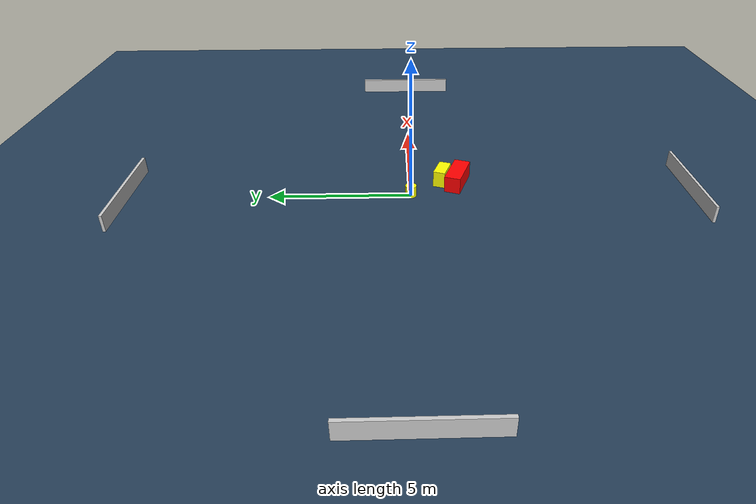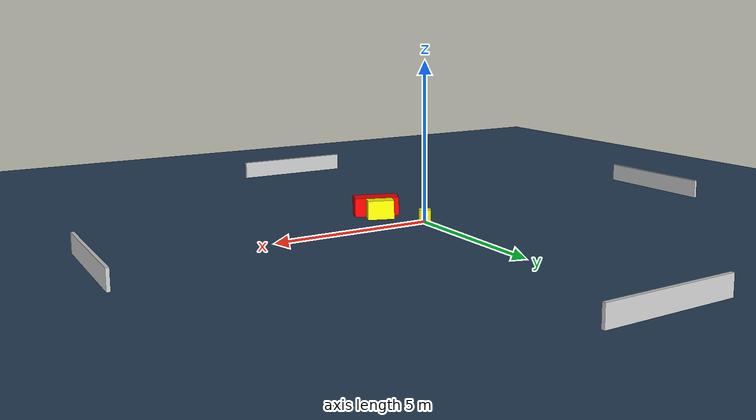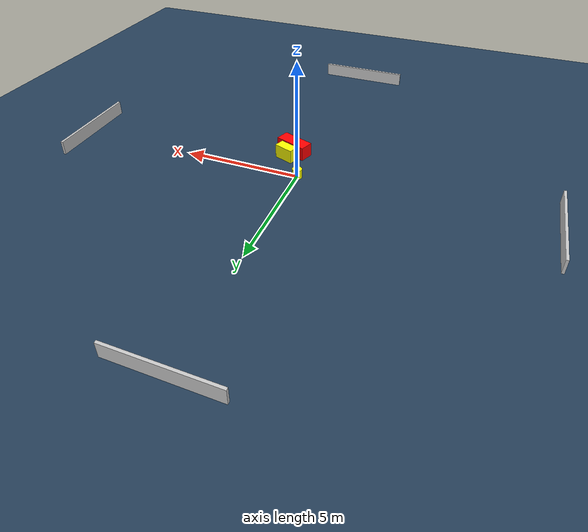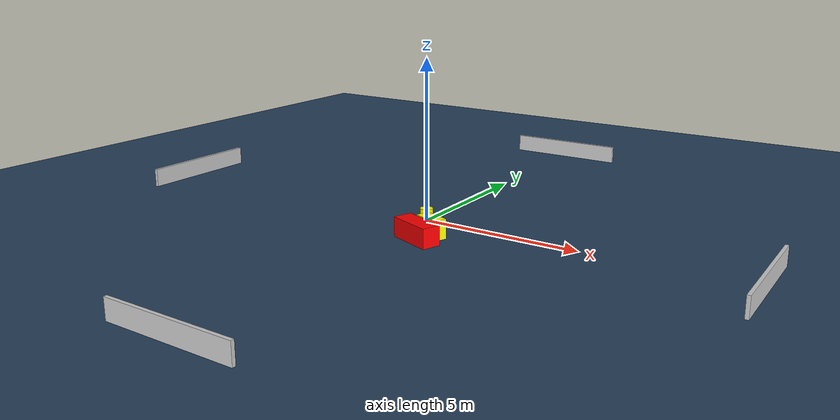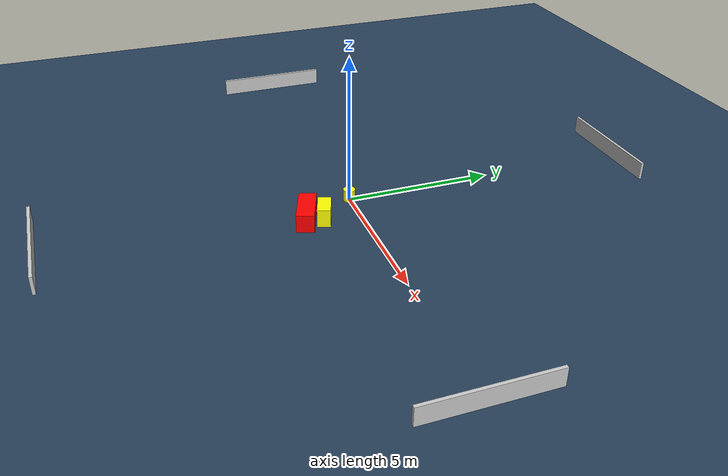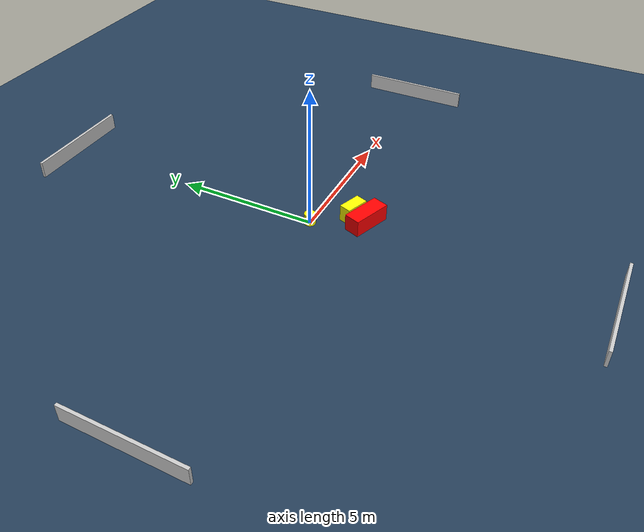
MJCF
<?xml version="1.0" ?>
<mujoco model="generated_environment">
  <option timestep="0.01" integrator="RK4" cone="elliptic"/>
  <default>
    <geom density="1"/>
  </default>
  <asset>
    <texture builtin="gradient" height="3072" name="skybox" rgb1="0.3 0.5 0.7" rgb2="0 0 0" type="skybox" width="512"/>
    <texture builtin="checker" height="300" name="groundplane" rgb1="0.2 0.3 0.4" rgb2="0.1 0.2 0.3" type="2d" width="300"/>
    <material name="groundplane" reflectance="0.2" texrepeat="5 5" texture="groundplane"/>
  </asset>
  <worldbody>
    <light dir="0 0 -1" directional="true" pos="0 0 1.5"/>
    <geom condim="3" friction="0.5 0.005 0.001" material="groundplane" name="floor" pos="0 0 0" size="0 0 0.05" type="plane"/>
    <body name="walls">
      <geom name="wall_1" condim="4" pos="-10.0 0.0 0.3" rgba="0.800000011920929 0.800000011920929 0.800000011920929 1.0" size="0.05 2.0 0.3" type="box"/>
      <geom name="wall_2" condim="4" pos="10.0 0.0 0.3" rgba="0.800000011920929 0.800000011920929 0.800000011920929 1.0" size="0.05 2.0 0.3" type="box"/>
      <geom name="wall_3" condim="4" pos="0.0 -10.0 0.3" rgba="0.800000011920929 0.800000011920929 0.800000011920929 1.0" size="2.0 0.05 0.3" type="box"/>
      <geom name="wall_4" condim="4" pos="0.0 10.0 0.3" rgba="0.800000011920929 0.800000011920929 0.800000011920929 1.0" size="2.0 0.05 0.3" type="box"/>
    </body>
    <body name="robot">
      <joint name="joint_x" type="slide" pos="0 0 0" axis="1 0 0"/>
      <joint name="joint_y" type="slide" pos="0 0 0" axis="0 1 0"/>
      <geom name="robot" type="cylinder" pos="0.0 0.0 0.2" size="0.2 0.2 0.0" mass="5.0" friction="1.0 0.005 0.0001" condim="4" rgba="1.0 1.0 0.0 1.0"/>
    </body>
    <body name="obstacle_1_movable">
      <geom name="obstacle_1_movable" condim="4" pos="0.9376465978167415 -1.1678939862273483 0.3" euler="0 0 250.1812486544055" friction="0.0 0.005 0.001" rgba="1.0 1.0 0.0 1.0" size="0.21570371628409102 0.4174665088916043 0.3" type="box" mass="0.1"/>
      <joint type="free"/>
    </body>
    <body name="obstacle_2_static">
      <geom name="obstacle_2_static" condim="4" pos="0.7917608313589704 -1.71200258607179 0.3" euler="0 0 69.86508241855125" friction="0.0 0.005 0.001" rgba="1.0 0.0 0.0 1.0" size="0.2899040030784573 0.7040512856462298 0.3" type="box"/>
    </body>
  </worldbody>
  <actuator>
    <motor name="actuator_x" joint="joint_x" gear="1" ctrlrange="-1 1"/>
    <motor name="actuator_y" joint="joint_y" gear="1" ctrlrange="-1 1"/>
  </actuator>
</mujoco>
